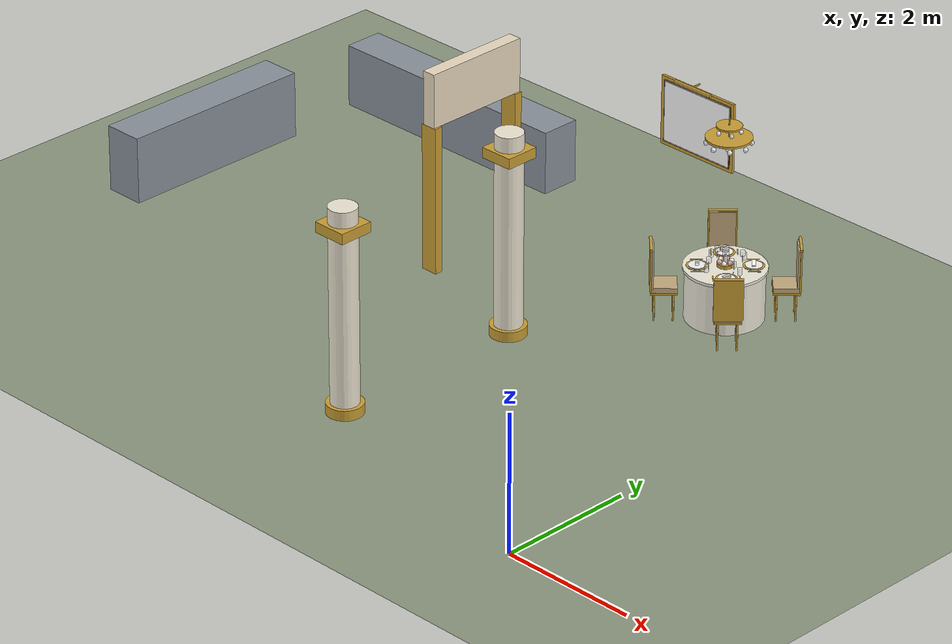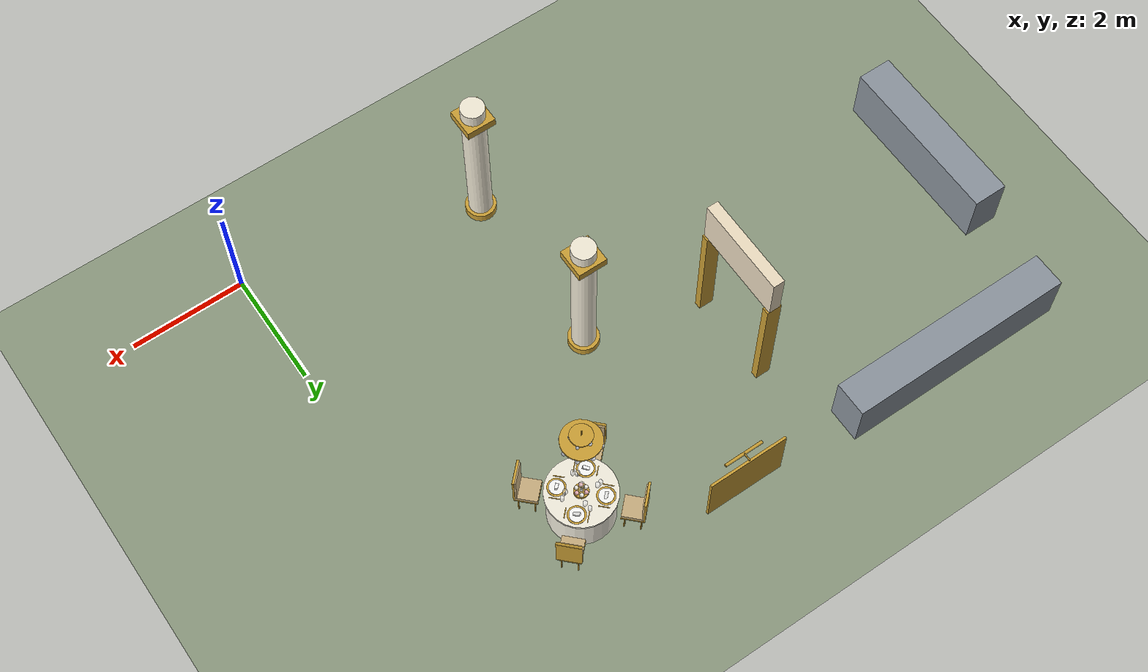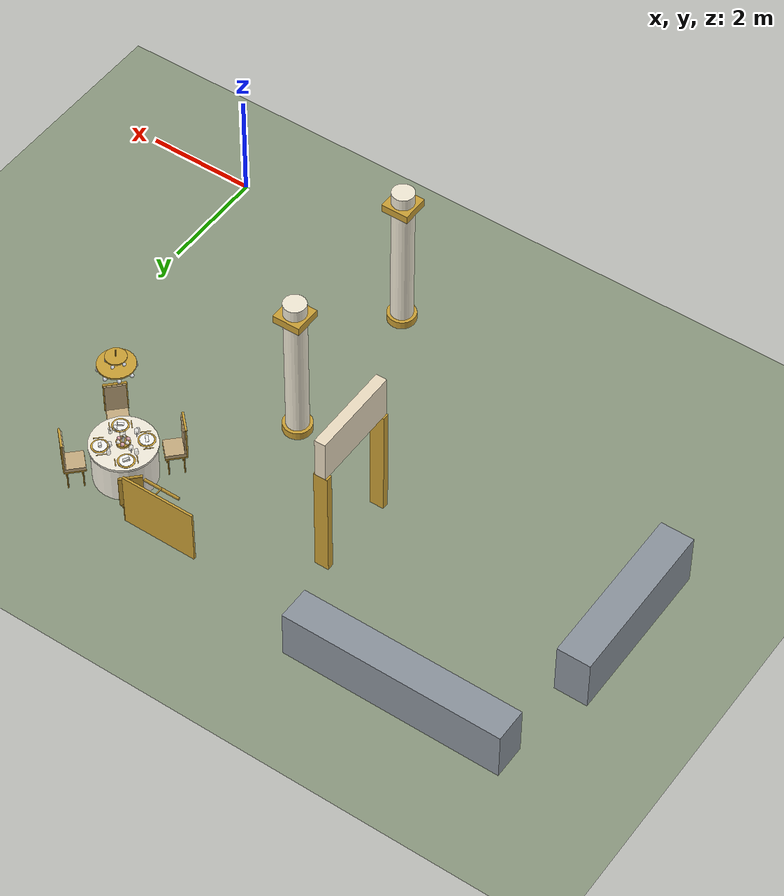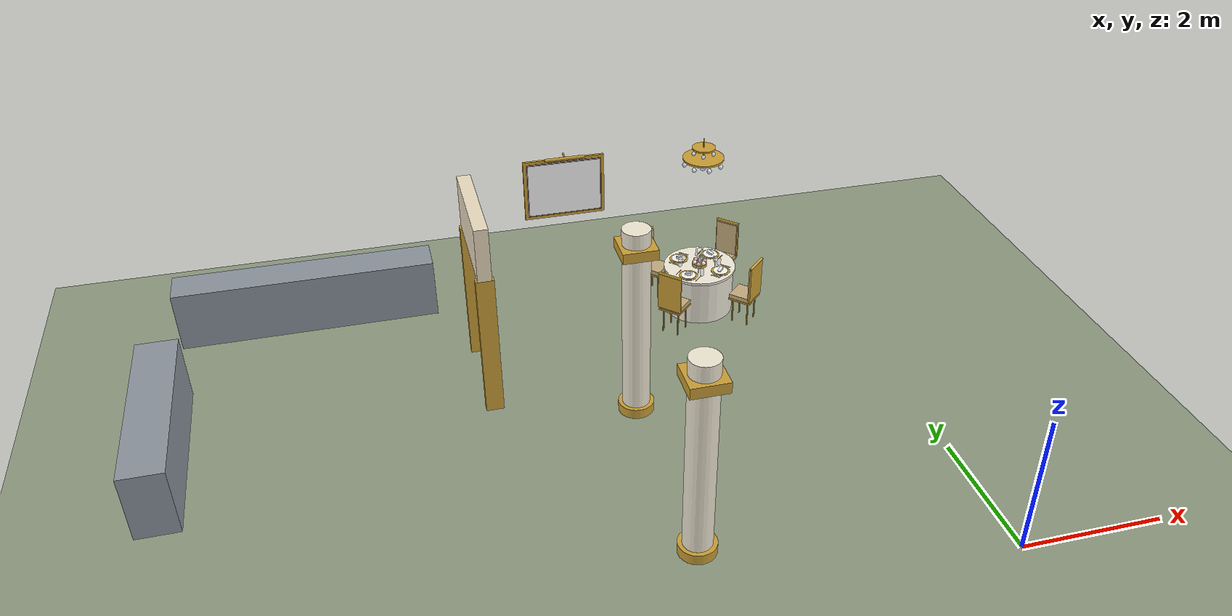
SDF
<sdf version="1.9">
 <world name="dar_tunibot">
  <model name="ground_plane">
   <static>true</static>
   <link name="link">
    <collision name="collision">
     <geometry><plane><normal>0 0 1</normal><size>60 60</size></plane></geometry>
    </collision>
    <visual name="visual">
     <geometry><plane><normal>0 0 1</normal><size>60 60</size></plane></geometry>
     <material><ambient>0.55 0.6 0.5 1</ambient><diffuse>0.55 0.6 0.5 1</diffuse></material>
    </visual>
   </link>
  </model>
  <model name="kitchen_door">
   <static>true</static>
   <pose>-6.0 5.3 0 0 0 1.5707963267948966</pose>
   <link name="link">
    <visual name="post_a_v">
     <pose>-0.760 0.000 1.100 0.0000 0.0000 0.0000</pose>
     <geometry><box><size>0.120 0.260 2.200</size></box></geometry>
     <material>
      <ambient>0.8 0.63 0.21 1</ambient>
      <diffuse>0.8 0.63 0.21 1</diffuse>
      <specular>0.1 0.1 0.1 1</specular>
     </material>
    </visual>
    <visual name="post_b_v">
     <pose>0.760 0.000 1.100 0.0000 0.0000 0.0000</pose>
     <geometry><box><size>0.120 0.260 2.200</size></box></geometry>
     <material>
      <ambient>0.8 0.63 0.21 1</ambient>
      <diffuse>0.8 0.63 0.21 1</diffuse>
      <specular>0.1 0.1 0.1 1</specular>
     </material>
    </visual>
    <visual name="lintel_v">
     <pose>0.000 0.000 2.600 0.0000 0.0000 0.0000</pose>
     <geometry><box><size>1.640 0.200 0.800</size></box></geometry>
     <material>
      <ambient>0.93 0.87 0.76 1</ambient>
      <diffuse>0.93 0.87 0.76 1</diffuse>
      <specular>0.1 0.1 0.1 1</specular>
     </material>
    </visual>
    <collision name="lintel_c">
     <pose>0.000 0.000 2.600 0.0000 0.0000 0.0000</pose>
     <geometry><box><size>1.640 0.200 0.800</size></box></geometry>
    </collision>
   </link>
  </model>
  <model name="column_3">
   <static>true</static>
   <pose>-4 4 0 0 0 0</pose>
   <link name="link">
    <visual name="base_v">
     <pose>0.000 0.000 0.075 0.0000 0.0000 0.0000</pose>
     <geometry><cylinder><radius>0.260</radius><length>0.150</length></cylinder></geometry>
     <material>
      <ambient>0.8 0.63 0.21 1</ambient>
      <diffuse>0.8 0.63 0.21 1</diffuse>
      <specular>0.1 0.1 0.1 1</specular>
     </material>
    </visual>
    <collision name="base_c">
     <pose>0.000 0.000 0.075 0.0000 0.0000 0.0000</pose>
     <geometry><cylinder><radius>0.260</radius><length>0.150</length></cylinder></geometry>
    </collision>
    <visual name="shaft_v">
     <pose>0.000 0.000 1.500 0.0000 0.0000 0.0000</pose>
     <geometry><cylinder><radius>0.200</radius><length>3.000</length></cylinder></geometry>
     <material>
      <ambient>0.95 0.92 0.84 1</ambient>
      <diffuse>0.95 0.92 0.84 1</diffuse>
      <specular>0.1 0.1 0.1 1</specular>
     </material>
    </visual>
    <collision name="shaft_c">
     <pose>0.000 0.000 1.500 0.0000 0.0000 0.0000</pose>
     <geometry><cylinder><radius>0.200</radius><length>3.000</length></cylinder></geometry>
    </collision>
    <visual name="capital_v">
     <pose>0.000 0.000 2.700 0.0000 0.0000 0.0000</pose>
     <geometry><box><size>0.500 0.500 0.150</size></box></geometry>
     <material>
      <ambient>0.8 0.63 0.21 1</ambient>
      <diffuse>0.8 0.63 0.21 1</diffuse>
      <specular>0.1 0.1 0.1 1</specular>
     </material>
    </visual>
   </link>
  </model>
  <model name="column_6">
   <static>true</static>
   <pose>-4 1 0 0 0 0</pose>
   <link name="link">
    <visual name="base_v">
     <pose>0.000 0.000 0.075 0.0000 0.0000 0.0000</pose>
     <geometry><cylinder><radius>0.260</radius><length>0.150</length></cylinder></geometry>
     <material>
      <ambient>0.8 0.63 0.21 1</ambient>
      <diffuse>0.8 0.63 0.21 1</diffuse>
      <specular>0.1 0.1 0.1 1</specular>
     </material>
    </visual>
    <collision name="base_c">
     <pose>0.000 0.000 0.075 0.0000 0.0000 0.0000</pose>
     <geometry><cylinder><radius>0.260</radius><length>0.150</length></cylinder></geometry>
    </collision>
    <visual name="shaft_v">
     <pose>0.000 0.000 1.500 0.0000 0.0000 0.0000</pose>
     <geometry><cylinder><radius>0.200</radius><length>3.000</length></cylinder></geometry>
     <material>
      <ambient>0.95 0.92 0.84 1</ambient>
      <diffuse>0.95 0.92 0.84 1</diffuse>
      <specular>0.1 0.1 0.1 1</specular>
     </material>
    </visual>
    <collision name="shaft_c">
     <pose>0.000 0.000 1.500 0.0000 0.0000 0.0000</pose>
     <geometry><cylinder><radius>0.200</radius><length>3.000</length></cylinder></geometry>
    </collision>
    <visual name="capital_v">
     <pose>0.000 0.000 2.700 0.0000 0.0000 0.0000</pose>
     <geometry><box><size>0.500 0.500 0.150</size></box></geometry>
     <material>
      <ambient>0.8 0.63 0.21 1</ambient>
      <diffuse>0.8 0.63 0.21 1</diffuse>
      <specular>0.1 0.1 0.1 1</specular>
     </material>
    </visual>
   </link>
  </model>
  <model name="table_1">
   <static>true</static>
   <pose>-2.3 6.4 0 0 0 0</pose>
   <link name="link">
    <visual name="cloth_v">
     <pose>0.000 0.000 0.370 0.0000 0.0000 0.0000</pose>
     <geometry><cylinder><radius>0.550</radius><length>0.740</length></cylinder></geometry>
     <material>
      <ambient>0.95 0.93 0.87 1</ambient>
      <diffuse>0.95 0.93 0.87 1</diffuse>
      <specular>0.1 0.1 0.1 1</specular>
     </material>
    </visual>
    <collision name="cloth_c">
     <pose>0.000 0.000 0.370 0.0000 0.0000 0.0000</pose>
     <geometry><cylinder><radius>0.550</radius><length>0.740</length></cylinder></geometry>
    </collision>
    <visual name="drape_v">
     <pose>0.000 0.000 0.750 0.0000 0.0000 0.0000</pose>
     <geometry><cylinder><radius>0.580</radius><length>0.040</length></cylinder></geometry>
     <material>
      <ambient>0.95 0.93 0.87 1</ambient>
      <diffuse>0.95 0.93 0.87 1</diffuse>
      <specular>0.1 0.1 0.1 1</specular>
     </material>
    </visual>
    <visual name="bowl_v">
     <pose>0.000 0.000 0.795 0.0000 0.0000 0.0000</pose>
     <geometry><cylinder><radius>0.120</radius><length>0.050</length></cylinder></geometry>
     <material>
      <ambient>0.8 0.63 0.21 1</ambient>
      <diffuse>0.8 0.63 0.21 1</diffuse>
      <specular>0.1 0.1 0.1 1</specular>
     </material>
    </visual>
    <visual name="bowl_foot_v">
     <pose>0.000 0.000 0.775 0.0000 0.0000 0.0000</pose>
     <geometry><cylinder><radius>0.060</radius><length>0.020</length></cylinder></geometry>
     <material>
      <ambient>0.8 0.63 0.21 1</ambient>
      <diffuse>0.8 0.63 0.21 1</diffuse>
      <specular>0.1 0.1 0.1 1</specular>
     </material>
    </visual>
    <visual name="candle_v">
     <pose>0.000 0.000 0.870 0.0000 0.0000 0.0000</pose>
     <geometry><cylinder><radius>0.022</radius><length>0.100</length></cylinder></geometry>
     <material>
      <ambient>0.98 0.98 0.97 1</ambient>
      <diffuse>0.98 0.98 0.97 1</diffuse>
      <specular>0.1 0.1 0.1 1</specular>
     </material>
    </visual>
    <visual name="flame_v">
     <pose>0.000 0.000 0.935 0.0000 0.0000 0.0000</pose>
     <geometry><sphere><radius>0.014</radius></sphere></geometry>
     <material>
      <ambient>0.8 0.63 0.21 1</ambient>
      <diffuse>0.8 0.63 0.21 1</diffuse>
      <specular>0.1 0.1 0.1 1</specular>
      <emissive>1.0 0.6 0.2 1</emissive>
     </material>
    </visual>
    <visual name="hurricane_v">
     <pose>0.000 0.000 0.940 0.0000 0.0000 0.0000</pose>
     <geometry><cylinder><radius>0.045</radius><length>0.240</length></cylinder></geometry>
     <transparency>0.75</transparency>
     <material>
      <ambient>0.9 0.92 0.96 1</ambient>
      <diffuse>0.9 0.92 0.96 1</diffuse>
      <specular>0.1 0.1 0.1 1</specular>
     </material>
    </visual>
    <visual name="rose0_v">
     <pose>0.085 0.000 0.835 0.0000 0.0000 0.0000</pose>
     <geometry><sphere><radius>0.035</radius></sphere></geometry>
     <material>
      <ambient>0.93 0.7 0.72 1</ambient>
      <diffuse>0.93 0.7 0.72 1</diffuse>
      <specular>0.1 0.1 0.1 1</specular>
     </material>
    </visual>
    <visual name="rose1_v">
     <pose>0.043 0.074 0.835 0.0000 0.0000 0.0000</pose>
     <geometry><sphere><radius>0.035</radius></sphere></geometry>
     <material>
      <ambient>0.97 0.95 0.91 1</ambient>
      <diffuse>0.97 0.95 0.91 1</diffuse>
      <specular>0.1 0.1 0.1 1</specular>
     </material>
    </visual>
    <visual name="rose2_v">
     <pose>-0.042 0.074 0.835 0.0000 0.0000 0.0000</pose>
     <geometry><sphere><radius>0.035</radius></sphere></geometry>
     <material>
      <ambient>0.93 0.7 0.72 1</ambient>
      <diffuse>0.93 0.7 0.72 1</diffuse>
      <specular>0.1 0.1 0.1 1</specular>
     </material>
    </visual>
    <visual name="rose3_v">
     <pose>-0.085 0.000 0.835 0.0000 0.0000 0.0000</pose>
     <geometry><sphere><radius>0.035</radius></sphere></geometry>
     <material>
      <ambient>0.97 0.95 0.91 1</ambient>
      <diffuse>0.97 0.95 0.91 1</diffuse>
      <specular>0.1 0.1 0.1 1</specular>
     </material>
    </visual>
    <visual name="rose4_v">
     <pose>-0.043 -0.074 0.835 0.0000 0.0000 0.0000</pose>
     <geometry><sphere><radius>0.035</radius></sphere></geometry>
     <material>
      <ambient>0.93 0.7 0.72 1</ambient>
      <diffuse>0.93 0.7 0.72 1</diffuse>
      <specular>0.1 0.1 0.1 1</specular>
     </material>
    </visual>
    <visual name="rose5_v">
     <pose>0.043 -0.074 0.835 0.0000 0.0000 0.0000</pose>
     <geometry><sphere><radius>0.035</radius></sphere></geometry>
     <material>
      <ambient>0.97 0.95 0.91 1</ambient>
      <diffuse>0.97 0.95 0.91 1</diffuse>
      <specular>0.1 0.1 0.1 1</specular>
     </material>
    </visual>
    <collision name="seat0_c">
     <pose>0.580 0.580 0.225 0.0000 0.0000 0.0000</pose>
     <geometry><box><size>0.400 0.400 0.450</size></box></geometry>
    </collision>
    <visual name="seat_frame0_v">
     <pose>0.580 0.580 0.430 0.0000 0.0000 0.7854</pose>
     <geometry><box><size>0.370 0.370 0.030</size></box></geometry>
     <material>
      <ambient>0.8 0.63 0.21 1</ambient>
      <diffuse>0.8 0.63 0.21 1</diffuse>
      <specular>0.1 0.1 0.1 1</specular>
     </material>
    </visual>
    <visual name="cushion0_v">
     <pose>0.580 0.580 0.480 0.0000 0.0000 0.7854</pose>
     <geometry><box><size>0.360 0.360 0.070</size></box></geometry>
     <material>
      <ambient>0.78 0.68 0.5 1</ambient>
      <diffuse>0.78 0.68 0.5 1</diffuse>
      <specular>0.1 0.1 0.1 1</specular>
     </material>
    </visual>
    <visual name="back_frame0_v">
     <pose>0.707 0.707 0.780 0.0000 0.0000 0.7854</pose>
     <geometry><box><size>0.025 0.400 0.620</size></box></geometry>
     <material>
      <ambient>0.8 0.63 0.21 1</ambient>
      <diffuse>0.8 0.63 0.21 1</diffuse>
      <specular>0.1 0.1 0.1 1</specular>
     </material>
    </visual>
    <visual name="back0_v">
     <pose>0.697 0.697 0.780 0.0000 0.0000 0.7854</pose>
     <geometry><box><size>0.050 0.360 0.580</size></box></geometry>
     <material>
      <ambient>0.78 0.68 0.5 1</ambient>
      <diffuse>0.78 0.68 0.5 1</diffuse>
      <specular>0.1 0.1 0.1 1</specular>
     </material>
    </visual>
    <visual name="back_top0_v">
     <pose>0.707 0.707 1.090 1.5708 0.0000 0.7854</pose>
     <geometry><cylinder><radius>0.020</radius><length>0.400</length></cylinder></geometry>
     <material>
      <ambient>0.8 0.63 0.21 1</ambient>
      <diffuse>0.8 0.63 0.21 1</diffuse>
      <specular>0.1 0.1 0.1 1</specular>
     </material>
    </visual>
    <visual name="leg0_0_v">
     <pose>0.580 0.396 0.210 0.0000 0.0000 0.7854</pose>
     <geometry><cylinder><radius>0.012</radius><length>0.420</length></cylinder></geometry>
     <material>
      <ambient>0.8 0.63 0.21 1</ambient>
      <diffuse>0.8 0.63 0.21 1</diffuse>
      <specular>0.1 0.1 0.1 1</specular>
     </material>
    </visual>
    <visual name="leg0_1_v">
     <pose>0.396 0.580 0.210 0.0000 0.0000 0.7854</pose>
     <geometry><cylinder><radius>0.012</radius><length>0.420</length></cylinder></geometry>
     <material>
      <ambient>0.8 0.63 0.21 1</ambient>
      <diffuse>0.8 0.63 0.21 1</diffuse>
      <specular>0.1 0.1 0.1 1</specular>
     </material>
    </visual>
    <visual name="leg0_2_v">
     <pose>0.764 0.580 0.210 0.0000 0.0000 0.7854</pose>
     <geometry><cylinder><radius>0.012</radius><length>0.420</length></cylinder></geometry>
     <material>
      <ambient>0.8 0.63 0.21 1</ambient>
      <diffuse>0.8 0.63 0.21 1</diffuse>
      <specular>0.1 0.1 0.1 1</specular>
     </material>
    </visual>
    <visual name="leg0_3_v">
     <pose>0.580 0.764 0.210 0.0000 0.0000 0.7854</pose>
     <geometry><cylinder><radius>0.012</radius><length>0.420</length></cylinder></geometry>
     <material>
      <ambient>0.8 0.63 0.21 1</ambient>
      <diffuse>0.8 0.63 0.21 1</diffuse>
      <specular>0.1 0.1 0.1 1</specular>
     </material>
    </visual>
    <visual name="charger0_v">
     <pose>0.269 0.269 0.773 0.0000 0.0000 0.7854</pose>
     <geometry><cylinder><radius>0.150</radius><length>0.006</length></cylinder></geometry>
     <material>
      <ambient>0.8 0.63 0.21 1</ambient>
      <diffuse>0.8 0.63 0.21 1</diffuse>
      <specular>0.1 0.1 0.1 1</specular>
     </material>
    </visual>
    <visual name="plate0_v">
     <pose>0.269 0.269 0.781 0.0000 0.0000 0.7854</pose>
     <geometry><cylinder><radius>0.120</radius><length>0.010</length></cylinder></geometry>
     <material>
      <ambient>0.98 0.98 0.97 1</ambient>
      <diffuse>0.98 0.98 0.97 1</diffuse>
      <specular>0.1 0.1 0.1 1</specular>
     </material>
    </visual>
    <visual name="napkin0_v">
     <pose>0.269 0.269 0.803 0.3500 0.0000 0.7854</pose>
     <geometry><box><size>0.050 0.110 0.035</size></box></geometry>
     <material>
      <ambient>0.98 0.98 0.97 1</ambient>
      <diffuse>0.98 0.98 0.97 1</diffuse>
      <specular>0.1 0.1 0.1 1</specular>
     </material>
    </visual>
    <visual name="fork0_v">
     <pose>0.396 0.141 0.772 0.0000 0.0000 0.7854</pose>
     <geometry><box><size>0.170 0.014 0.004</size></box></geometry>
     <material>
      <ambient>0.8 0.63 0.21 1</ambient>
      <diffuse>0.8 0.63 0.21 1</diffuse>
      <specular>0.1 0.1 0.1 1</specular>
     </material>
    </visual>
    <visual name="knife0_v">
     <pose>0.141 0.396 0.772 0.0000 0.0000 0.7854</pose>
     <geometry><box><size>0.180 0.012 0.004</size></box></geometry>
     <material>
      <ambient>0.8 0.63 0.21 1</ambient>
      <diffuse>0.8 0.63 0.21 1</diffuse>
      <specular>0.1 0.1 0.1 1</specular>
     </material>
    </visual>
    <visual name="wine_stem0_v">
     <pose>0.092 0.233 0.820 0.0000 0.0000 0.7854</pose>
     <geometry><cylinder><radius>0.004</radius><length>0.100</length></cylinder></geometry>
     <material>
      <ambient>0.9 0.92 0.96 1</ambient>
      <diffuse>0.9 0.92 0.96 1</diffuse>
      <specular>0.1 0.1 0.1 1</specular>
     </material>
    </visual>
    <visual name="wine_bowl0_v">
     <pose>0.092 0.233 0.905 0.0000 0.0000 0.7854</pose>
     <geometry><cylinder><radius>0.035</radius><length>0.070</length></cylinder></geometry>
     <transparency>0.6</transparency>
     <material>
      <ambient>0.9 0.92 0.96 1</ambient>
      <diffuse>0.9 0.92 0.96 1</diffuse>
      <specular>0.1 0.1 0.1 1</specular>
     </material>
    </visual>
    <visual name="water0_v">
     <pose>0.057 0.311 0.820 0.0000 0.0000 0.7854</pose>
     <geometry><cylinder><radius>0.030</radius><length>0.100</length></cylinder></geometry>
     <transparency>0.6</transparency>
     <material>
      <ambient>0.9 0.92 0.96 1</ambient>
      <diffuse>0.9 0.92 0.96 1</diffuse>
      <specular>0.1 0.1 0.1 1</specular>
     </material>
    </visual>
    <collision name="seat1_c">
     <pose>-0.580 0.580 0.225 0.0000 0.0000 0.0000</pose>
     <geometry><box><size>0.400 0.400 0.450</size></box></geometry>
    </collision>
    <visual name="seat_frame1_v">
     <pose>-0.580 0.580 0.430 0.0000 0.0000 2.3562</pose>
     <geometry><box><size>0.370 0.370 0.030</size></box></geometry>
     <material>
      <ambient>0.8 0.63 0.21 1</ambient>
      <diffuse>0.8 0.63 0.21 1</diffuse>
      <specular>0.1 0.1 0.1 1</specular>
     </material>
    </visual>
    <visual name="cushion1_v">
     <pose>-0.580 0.580 0.480 0.0000 0.0000 2.3562</pose>
     <geometry><box><size>0.360 0.360 0.070</size></box></geometry>
     <material>
      <ambient>0.78 0.68 0.5 1</ambient>
      <diffuse>0.78 0.68 0.5 1</diffuse>
      <specular>0.1 0.1 0.1 1</specular>
     </material>
    </visual>
    <visual name="back_frame1_v">
     <pose>-0.707 0.707 0.780 0.0000 0.0000 2.3562</pose>
     <geometry><box><size>0.025 0.400 0.620</size></box></geometry>
     <material>
      <ambient>0.8 0.63 0.21 1</ambient>
      <diffuse>0.8 0.63 0.21 1</diffuse>
      <specular>0.1 0.1 0.1 1</specular>
     </material>
    </visual>
    <visual name="back1_v">
     <pose>-0.697 0.697 0.780 0.0000 0.0000 2.3562</pose>
     <geometry><box><size>0.050 0.360 0.580</size></box></geometry>
     <material>
      <ambient>0.78 0.68 0.5 1</ambient>
      <diffuse>0.78 0.68 0.5 1</diffuse>
      <specular>0.1 0.1 0.1 1</specular>
     </material>
    </visual>
    <visual name="back_top1_v">
     <pose>-0.707 0.707 1.090 1.5708 0.0000 2.3562</pose>
     <geometry><cylinder><radius>0.020</radius><length>0.400</length></cylinder></geometry>
     <material>
      <ambient>0.8 0.63 0.21 1</ambient>
      <diffuse>0.8 0.63 0.21 1</diffuse>
      <specular>0.1 0.1 0.1 1</specular>
     </material>
    </visual>
    <visual name="leg1_0_v">
     <pose>-0.396 0.580 0.210 0.0000 0.0000 2.3562</pose>
     <geometry><cylinder><radius>0.012</radius><length>0.420</length></cylinder></geometry>
     <material>
      <ambient>0.8 0.63 0.21 1</ambient>
      <diffuse>0.8 0.63 0.21 1</diffuse>
      <specular>0.1 0.1 0.1 1</specular>
     </material>
    </visual>
    <visual name="leg1_1_v">
     <pose>-0.580 0.396 0.210 0.0000 0.0000 2.3562</pose>
     <geometry><cylinder><radius>0.012</radius><length>0.420</length></cylinder></geometry>
     <material>
      <ambient>0.8 0.63 0.21 1</ambient>
      <diffuse>0.8 0.63 0.21 1</diffuse>
      <specular>0.1 0.1 0.1 1</specular>
     </material>
    </visual>
    <visual name="leg1_2_v">
     <pose>-0.580 0.764 0.210 0.0000 0.0000 2.3562</pose>
     <geometry><cylinder><radius>0.012</radius><length>0.420</length></cylinder></geometry>
     <material>
      <ambient>0.8 0.63 0.21 1</ambient>
      <diffuse>0.8 0.63 0.21 1</diffuse>
      <specular>0.1 0.1 0.1 1</specular>
     </material>
    </visual>
    <visual name="leg1_3_v">
     <pose>-0.764 0.580 0.210 0.0000 0.0000 2.3562</pose>
     <geometry><cylinder><radius>0.012</radius><length>0.420</length></cylinder></geometry>
     <material>
      <ambient>0.8 0.63 0.21 1</ambient>
      <diffuse>0.8 0.63 0.21 1</diffuse>
      <specular>0.1 0.1 0.1 1</specular>
     </material>
    </visual>
    <visual name="charger1_v">
     <pose>-0.269 0.269 0.773 0.0000 0.0000 2.3562</pose>
     <geometry><cylinder><radius>0.150</radius><length>0.006</length></cylinder></geometry>
     <material>
      <ambient>0.8 0.63 0.21 1</ambient>
      <diffuse>0.8 0.63 0.21 1</diffuse>
      <specular>0.1 0.1 0.1 1</specular>
     </material>
    </visual>
    <visual name="plate1_v">
     <pose>-0.269 0.269 0.781 0.0000 0.0000 2.3562</pose>
     <geometry><cylinder><radius>0.120</radius><length>0.010</length></cylinder></geometry>
     <material>
      <ambient>0.98 0.98 0.97 1</ambient>
      <diffuse>0.98 0.98 0.97 1</diffuse>
      <specular>0.1 0.1 0.1 1</specular>
     </material>
    </visual>
    <visual name="napkin1_v">
     <pose>-0.269 0.269 0.803 0.3500 0.0000 2.3562</pose>
     <geometry><box><size>0.050 0.110 0.035</size></box></geometry>
     <material>
      <ambient>0.98 0.98 0.97 1</ambient>
      <diffuse>0.98 0.98 0.97 1</diffuse>
      <specular>0.1 0.1 0.1 1</specular>
     </material>
    </visual>
    <visual name="fork1_v">
     <pose>-0.141 0.396 0.772 0.0000 0.0000 2.3562</pose>
     <geometry><box><size>0.170 0.014 0.004</size></box></geometry>
     <material>
      <ambient>0.8 0.63 0.21 1</ambient>
      <diffuse>0.8 0.63 0.21 1</diffuse>
      <specular>0.1 0.1 0.1 1</specular>
     </material>
    </visual>
    <visual name="knife1_v">
     <pose>-0.396 0.141 0.772 0.0000 0.0000 2.3562</pose>
     <geometry><box><size>0.180 0.012 0.004</size></box></geometry>
     <material>
      <ambient>0.8 0.63 0.21 1</ambient>
      <diffuse>0.8 0.63 0.21 1</diffuse>
      <specular>0.1 0.1 0.1 1</specular>
     </material>
    </visual>
    <visual name="wine_stem1_v">
     <pose>-0.233 0.092 0.820 0.0000 0.0000 2.3562</pose>
     <geometry><cylinder><radius>0.004</radius><length>0.100</length></cylinder></geometry>
     <material>
      <ambient>0.9 0.92 0.96 1</ambient>
      <diffuse>0.9 0.92 0.96 1</diffuse>
      <specular>0.1 0.1 0.1 1</specular>
     </material>
    </visual>
    <visual name="wine_bowl1_v">
     <pose>-0.233 0.092 0.905 0.0000 0.0000 2.3562</pose>
     <geometry><cylinder><radius>0.035</radius><length>0.070</length></cylinder></geometry>
     <transparency>0.6</transparency>
     <material>
      <ambient>0.9 0.92 0.96 1</ambient>
      <diffuse>0.9 0.92 0.96 1</diffuse>
      <specular>0.1 0.1 0.1 1</specular>
     </material>
    </visual>
    <visual name="water1_v">
     <pose>-0.311 0.057 0.820 0.0000 0.0000 2.3562</pose>
     <geometry><cylinder><radius>0.030</radius><length>0.100</length></cylinder></geometry>
     <transparency>0.6</transparency>
     <material>
      <ambient>0.9 0.92 0.96 1</ambient>
      <diffuse>0.9 0.92 0.96 1</diffuse>
      <specular>0.1 0.1 0.1 1</specular>
     </material>
    </visual>
    <collision name="seat2_c">
     <pose>-0.580 -0.580 0.225 0.0000 0.0000 0.0000</pose>
     <geometry><box><size>0.400 0.400 0.450</size></box></geometry>
    </collision>
    <visual name="seat_frame2_v">
     <pose>-0.580 -0.580 0.430 0.0000 0.0000 3.9270</pose>
     <geometry><box><size>0.370 0.370 0.030</size></box></geometry>
     <material>
      <ambient>0.8 0.63 0.21 1</ambient>
      <diffuse>0.8 0.63 0.21 1</diffuse>
      <specular>0.1 0.1 0.1 1</specular>
     </material>
    </visual>
    <visual name="cushion2_v">
     <pose>-0.580 -0.580 0.480 0.0000 0.0000 3.9270</pose>
     <geometry><box><size>0.360 0.360 0.070</size></box></geometry>
     <material>
      <ambient>0.78 0.68 0.5 1</ambient>
      <diffuse>0.78 0.68 0.5 1</diffuse>
      <specular>0.1 0.1 0.1 1</specular>
     </material>
    </visual>
    <visual name="back_frame2_v">
     <pose>-0.707 -0.707 0.780 0.0000 0.0000 3.9270</pose>
     <geometry><box><size>0.025 0.400 0.620</size></box></geometry>
     <material>
      <ambient>0.8 0.63 0.21 1</ambient>
      <diffuse>0.8 0.63 0.21 1</diffuse>
      <specular>0.1 0.1 0.1 1</specular>
     </material>
    </visual>
    <visual name="back2_v">
     <pose>-0.697 -0.697 0.780 0.0000 0.0000 3.9270</pose>
     <geometry><box><size>0.050 0.360 0.580</size></box></geometry>
     <material>
      <ambient>0.78 0.68 0.5 1</ambient>
      <diffuse>0.78 0.68 0.5 1</diffuse>
      <specular>0.1 0.1 0.1 1</specular>
     </material>
    </visual>
    <visual name="back_top2_v">
     <pose>-0.707 -0.707 1.090 1.5708 0.0000 3.9270</pose>
     <geometry><cylinder><radius>0.020</radius><length>0.400</length></cylinder></geometry>
     <material>
      <ambient>0.8 0.63 0.21 1</ambient>
      <diffuse>0.8 0.63 0.21 1</diffuse>
      <specular>0.1 0.1 0.1 1</specular>
     </material>
    </visual>
    <visual name="leg2_0_v">
     <pose>-0.580 -0.396 0.210 0.0000 0.0000 3.9270</pose>
     <geometry><cylinder><radius>0.012</radius><length>0.420</length></cylinder></geometry>
     <material>
      <ambient>0.8 0.63 0.21 1</ambient>
      <diffuse>0.8 0.63 0.21 1</diffuse>
      <specular>0.1 0.1 0.1 1</specular>
     </material>
    </visual>
    <visual name="leg2_1_v">
     <pose>-0.396 -0.580 0.210 0.0000 0.0000 3.9270</pose>
     <geometry><cylinder><radius>0.012</radius><length>0.420</length></cylinder></geometry>
     <material>
      <ambient>0.8 0.63 0.21 1</ambient>
      <diffuse>0.8 0.63 0.21 1</diffuse>
      <specular>0.1 0.1 0.1 1</specular>
     </material>
    </visual>
    <visual name="leg2_2_v">
     <pose>-0.764 -0.580 0.210 0.0000 0.0000 3.9270</pose>
     <geometry><cylinder><radius>0.012</radius><length>0.420</length></cylinder></geometry>
     <material>
      <ambient>0.8 0.63 0.21 1</ambient>
      <diffuse>0.8 0.63 0.21 1</diffuse>
      <specular>0.1 0.1 0.1 1</specular>
     </material>
    </visual>
    <visual name="leg2_3_v">
     <pose>-0.580 -0.764 0.210 0.0000 0.0000 3.9270</pose>
     <geometry><cylinder><radius>0.012</radius><length>0.420</length></cylinder></geometry>
     <material>
      <ambient>0.8 0.63 0.21 1</ambient>
      <diffuse>0.8 0.63 0.21 1</diffuse>
      <specular>0.1 0.1 0.1 1</specular>
     </material>
    </visual>
    <visual name="charger2_v">
     <pose>-0.269 -0.269 0.773 0.0000 0.0000 3.9270</pose>
     <geometry><cylinder><radius>0.150</radius><length>0.006</length></cylinder></geometry>
     <material>
      <ambient>0.8 0.63 0.21 1</ambient>
      <diffuse>0.8 0.63 0.21 1</diffuse>
      <specular>0.1 0.1 0.1 1</specular>
     </material>
    </visual>
    <visual name="plate2_v">
     <pose>-0.269 -0.269 0.781 0.0000 0.0000 3.9270</pose>
     <geometry><cylinder><radius>0.120</radius><length>0.010</length></cylinder></geometry>
     <material>
      <ambient>0.98 0.98 0.97 1</ambient>
      <diffuse>0.98 0.98 0.97 1</diffuse>
      <specular>0.1 0.1 0.1 1</specular>
     </material>
    </visual>
    <visual name="napkin2_v">
     <pose>-0.269 -0.269 0.803 0.3500 0.0000 3.9270</pose>
     <geometry><box><size>0.050 0.110 0.035</size></box></geometry>
     <material>
      <ambient>0.98 0.98 0.97 1</ambient>
      <diffuse>0.98 0.98 0.97 1</diffuse>
      <specular>0.1 0.1 0.1 1</specular>
     </material>
    </visual>
    <visual name="fork2_v">
     <pose>-0.396 -0.141 0.772 0.0000 0.0000 3.9270</pose>
     <geometry><box><size>0.170 0.014 0.004</size></box></geometry>
     <material>
      <ambient>0.8 0.63 0.21 1</ambient>
      <diffuse>0.8 0.63 0.21 1</diffuse>
      <specular>0.1 0.1 0.1 1</specular>
     </material>
    </visual>
    <visual name="knife2_v">
     <pose>-0.141 -0.396 0.772 0.0000 0.0000 3.9270</pose>
     <geometry><box><size>0.180 0.012 0.004</size></box></geometry>
     <material>
      <ambient>0.8 0.63 0.21 1</ambient>
      <diffuse>0.8 0.63 0.21 1</diffuse>
      <specular>0.1 0.1 0.1 1</specular>
     </material>
    </visual>
    <visual name="wine_stem2_v">
     <pose>-0.092 -0.233 0.820 0.0000 0.0000 3.9270</pose>
     <geometry><cylinder><radius>0.004</radius><length>0.100</length></cylinder></geometry>
     <material>
      <ambient>0.9 0.92 0.96 1</ambient>
      <diffuse>0.9 0.92 0.96 1</diffuse>
      <specular>0.1 0.1 0.1 1</specular>
     </material>
    </visual>
    <visual name="wine_bowl2_v">
     <pose>-0.092 -0.233 0.905 0.0000 0.0000 3.9270</pose>
     <geometry><cylinder><radius>0.035</radius><length>0.070</length></cylinder></geometry>
     <transparency>0.6</transparency>
     <material>
      <ambient>0.9 0.92 0.96 1</ambient>
      <diffuse>0.9 0.92 0.96 1</diffuse>
      <specular>0.1 0.1 0.1 1</specular>
     </material>
    </visual>
    <visual name="water2_v">
     <pose>-0.057 -0.311 0.820 0.0000 0.0000 3.9270</pose>
     <geometry><cylinder><radius>0.030</radius><length>0.100</length></cylinder></geometry>
     <transparency>0.6</transparency>
     <material>
      <ambient>0.9 0.92 0.96 1</ambient>
      <diffuse>0.9 0.92 0.96 1</diffuse>
      <specular>0.1 0.1 0.1 1</specular>
     </material>
    </visual>
    <collision name="seat3_c">
     <pose>0.580 -0.580 0.225 0.0000 0.0000 0.0000</pose>
     <geometry><box><size>0.400 0.400 0.450</size></box></geometry>
    </collision>
    <visual name="seat_frame3_v">
     <pose>0.580 -0.580 0.430 0.0000 0.0000 5.4978</pose>
     <geometry><box><size>0.370 0.370 0.030</size></box></geometry>
     <material>
      <ambient>0.8 0.63 0.21 1</ambient>
      <diffuse>0.8 0.63 0.21 1</diffuse>
      <specular>0.1 0.1 0.1 1</specular>
     </material>
    </visual>
    <visual name="cushion3_v">
     <pose>0.580 -0.580 0.480 0.0000 0.0000 5.4978</pose>
     <geometry><box><size>0.360 0.360 0.070</size></box></geometry>
     <material>
      <ambient>0.78 0.68 0.5 1</ambient>
      <diffuse>0.78 0.68 0.5 1</diffuse>
      <specular>0.1 0.1 0.1 1</specular>
     </material>
    </visual>
    <visual name="back_frame3_v">
     <pose>0.707 -0.707 0.780 0.0000 0.0000 5.4978</pose>
     <geometry><box><size>0.025 0.400 0.620</size></box></geometry>
     <material>
      <ambient>0.8 0.63 0.21 1</ambient>
      <diffuse>0.8 0.63 0.21 1</diffuse>
      <specular>0.1 0.1 0.1 1</specular>
     </material>
    </visual>
    <visual name="back3_v">
     <pose>0.697 -0.697 0.780 0.0000 0.0000 5.4978</pose>
     <geometry><box><size>0.050 0.360 0.580</size></box></geometry>
     <material>
      <ambient>0.78 0.68 0.5 1</ambient>
      <diffuse>0.78 0.68 0.5 1</diffuse>
      <specular>0.1 0.1 0.1 1</specular>
     </material>
    </visual>
    <visual name="back_top3_v">
     <pose>0.707 -0.707 1.090 1.5708 0.0000 5.4978</pose>
     <geometry><cylinder><radius>0.020</radius><length>0.400</length></cylinder></geometry>
     <material>
      <ambient>0.8 0.63 0.21 1</ambient>
      <diffuse>0.8 0.63 0.21 1</diffuse>
      <specular>0.1 0.1 0.1 1</specular>
     </material>
    </visual>
    <visual name="leg3_0_v">
     <pose>0.396 -0.580 0.210 0.0000 0.0000 5.4978</pose>
     <geometry><cylinder><radius>0.012</radius><length>0.420</length></cylinder></geometry>
     <material>
      <ambient>0.8 0.63 0.21 1</ambient>
      <diffuse>0.8 0.63 0.21 1</diffuse>
      <specular>0.1 0.1 0.1 1</specular>
     </material>
    </visual>
    <visual name="leg3_1_v">
     <pose>0.580 -0.396 0.210 0.0000 0.0000 5.4978</pose>
     <geometry><cylinder><radius>0.012</radius><length>0.420</length></cylinder></geometry>
     <material>
      <ambient>0.8 0.63 0.21 1</ambient>
      <diffuse>0.8 0.63 0.21 1</diffuse>
      <specular>0.1 0.1 0.1 1</specular>
     </material>
    </visual>
    <visual name="leg3_2_v">
     <pose>0.580 -0.764 0.210 0.0000 0.0000 5.4978</pose>
     <geometry><cylinder><radius>0.012</radius><length>0.420</length></cylinder></geometry>
     <material>
      <ambient>0.8 0.63 0.21 1</ambient>
      <diffuse>0.8 0.63 0.21 1</diffuse>
      <specular>0.1 0.1 0.1 1</specular>
     </material>
    </visual>
    <visual name="leg3_3_v">
     <pose>0.764 -0.580 0.210 0.0000 0.0000 5.4978</pose>
     <geometry><cylinder><radius>0.012</radius><length>0.420</length></cylinder></geometry>
     <material>
      <ambient>0.8 0.63 0.21 1</ambient>
      <diffuse>0.8 0.63 0.21 1</diffuse>
      <specular>0.1 0.1 0.1 1</specular>
     </material>
    </visual>
    <visual name="charger3_v">
     <pose>0.269 -0.269 0.773 0.0000 0.0000 5.4978</pose>
     <geometry><cylinder><radius>0.150</radius><length>0.006</length></cylinder></geometry>
     <material>
      <ambient>0.8 0.63 0.21 1</ambient>
      <diffuse>0.8 0.63 0.21 1</diffuse>
      <specular>0.1 0.1 0.1 1</specular>
     </material>
    </visual>
    <visual name="plate3_v">
     <pose>0.269 -0.269 0.781 0.0000 0.0000 5.4978</pose>
     <geometry><cylinder><radius>0.120</radius><length>0.010</length></cylinder></geometry>
     <material>
      <ambient>0.98 0.98 0.97 1</ambient>
      <diffuse>0.98 0.98 0.97 1</diffuse>
      <specular>0.1 0.1 0.1 1</specular>
     </material>
    </visual>
    <visual name="napkin3_v">
     <pose>0.269 -0.269 0.803 0.3500 0.0000 5.4978</pose>
     <geometry><box><size>0.050 0.110 0.035</size></box></geometry>
     <material>
      <ambient>0.98 0.98 0.97 1</ambient>
      <diffuse>0.98 0.98 0.97 1</diffuse>
      <specular>0.1 0.1 0.1 1</specular>
     </material>
    </visual>
    <visual name="fork3_v">
     <pose>0.141 -0.396 0.772 0.0000 0.0000 5.4978</pose>
     <geometry><box><size>0.170 0.014 0.004</size></box></geometry>
     <material>
      <ambient>0.8 0.63 0.21 1</ambient>
      <diffuse>0.8 0.63 0.21 1</diffuse>
      <specular>0.1 0.1 0.1 1</specular>
     </material>
    </visual>
    <visual name="knife3_v">
     <pose>0.396 -0.141 0.772 0.0000 0.0000 5.4978</pose>
     <geometry><box><size>0.180 0.012 0.004</size></box></geometry>
     <material>
      <ambient>0.8 0.63 0.21 1</ambient>
      <diffuse>0.8 0.63 0.21 1</diffuse>
      <specular>0.1 0.1 0.1 1</specular>
     </material>
    </visual>
    <visual name="wine_stem3_v">
     <pose>0.233 -0.092 0.820 0.0000 0.0000 5.4978</pose>
     <geometry><cylinder><radius>0.004</radius><length>0.100</length></cylinder></geometry>
     <material>
      <ambient>0.9 0.92 0.96 1</ambient>
      <diffuse>0.9 0.92 0.96 1</diffuse>
      <specular>0.1 0.1 0.1 1</specular>
     </material>
    </visual>
    <visual name="wine_bowl3_v">
     <pose>0.233 -0.092 0.905 0.0000 0.0000 5.4978</pose>
     <geometry><cylinder><radius>0.035</radius><length>0.070</length></cylinder></geometry>
     <transparency>0.6</transparency>
     <material>
      <ambient>0.9 0.92 0.96 1</ambient>
      <diffuse>0.9 0.92 0.96 1</diffuse>
      <specular>0.1 0.1 0.1 1</specular>
     </material>
    </visual>
    <visual name="water3_v">
     <pose>0.311 -0.057 0.820 0.0000 0.0000 5.4978</pose>
     <geometry><cylinder><radius>0.030</radius><length>0.100</length></cylinder></geometry>
     <transparency>0.6</transparency>
     <material>
      <ambient>0.9 0.92 0.96 1</ambient>
      <diffuse>0.9 0.92 0.96 1</diffuse>
      <specular>0.1 0.1 0.1 1</specular>
     </material>
    </visual>
    <visual name="chand_rod_v">
     <pose>0.000 0.000 2.750 0.0000 0.0000 0.0000</pose>
     <geometry><cylinder><radius>0.010</radius><length>0.500</length></cylinder></geometry>
     <material>
      <ambient>0.8 0.63 0.21 1</ambient>
      <diffuse>0.8 0.63 0.21 1</diffuse>
      <specular>0.1 0.1 0.1 1</specular>
     </material>
    </visual>
    <visual name="chand_ring_v">
     <pose>0.000 0.000 2.680 0.0000 0.0000 0.0000</pose>
     <geometry><cylinder><radius>0.320</radius><length>0.030</length></cylinder></geometry>
     <material>
      <ambient>0.8 0.63 0.21 1</ambient>
      <diffuse>0.8 0.63 0.21 1</diffuse>
      <specular>0.1 0.1 0.1 1</specular>
     </material>
    </visual>
    <visual name="chand_ring_top_v">
     <pose>0.000 0.000 2.850 0.0000 0.0000 0.0000</pose>
     <geometry><cylinder><radius>0.180</radius><length>0.025</length></cylinder></geometry>
     <material>
      <ambient>0.8 0.63 0.21 1</ambient>
      <diffuse>0.8 0.63 0.21 1</diffuse>
      <specular>0.1 0.1 0.1 1</specular>
     </material>
    </visual>
    <visual name="chand_drop_v">
     <pose>0.000 0.000 2.520 0.0000 0.0000 0.0000</pose>
     <geometry><sphere><radius>0.050</radius></sphere></geometry>
     <material>
      <ambient>0.9 0.92 0.96 1</ambient>
      <diffuse>0.9 0.92 0.96 1</diffuse>
      <specular>0.1 0.1 0.1 1</specular>
      <emissive>0.55 0.52 0.45 1</emissive>
     </material>
    </visual>
    <visual name="crystal0_0_v">
     <pose>0.300 0.000 2.600 0.0000 0.0000 0.0000</pose>
     <geometry><sphere><radius>0.035</radius></sphere></geometry>
     <material>
      <ambient>0.9 0.92 0.96 1</ambient>
      <diffuse>0.9 0.92 0.96 1</diffuse>
      <specular>0.1 0.1 0.1 1</specular>
      <emissive>0.55 0.52 0.45 1</emissive>
     </material>
    </visual>
    <visual name="crystal0_1_v">
     <pose>0.212 0.212 2.600 0.0000 0.0000 0.0000</pose>
     <geometry><sphere><radius>0.035</radius></sphere></geometry>
     <material>
      <ambient>0.9 0.92 0.96 1</ambient>
      <diffuse>0.9 0.92 0.96 1</diffuse>
      <specular>0.1 0.1 0.1 1</specular>
      <emissive>0.55 0.52 0.45 1</emissive>
     </material>
    </visual>
    <visual name="crystal0_2_v">
     <pose>0.000 0.300 2.600 0.0000 0.0000 0.0000</pose>
     <geometry><sphere><radius>0.035</radius></sphere></geometry>
     <material>
      <ambient>0.9 0.92 0.96 1</ambient>
      <diffuse>0.9 0.92 0.96 1</diffuse>
      <specular>0.1 0.1 0.1 1</specular>
      <emissive>0.55 0.52 0.45 1</emissive>
     </material>
    </visual>
    <visual name="crystal0_3_v">
     <pose>-0.212 0.212 2.600 0.0000 0.0000 0.0000</pose>
     <geometry><sphere><radius>0.035</radius></sphere></geometry>
     <material>
      <ambient>0.9 0.92 0.96 1</ambient>
      <diffuse>0.9 0.92 0.96 1</diffuse>
      <specular>0.1 0.1 0.1 1</specular>
      <emissive>0.55 0.52 0.45 1</emissive>
     </material>
    </visual>
    <visual name="crystal0_4_v">
     <pose>-0.300 0.000 2.600 0.0000 0.0000 0.0000</pose>
     <geometry><sphere><radius>0.035</radius></sphere></geometry>
     <material>
      <ambient>0.9 0.92 0.96 1</ambient>
      <diffuse>0.9 0.92 0.96 1</diffuse>
      <specular>0.1 0.1 0.1 1</specular>
      <emissive>0.55 0.52 0.45 1</emissive>
     </material>
    </visual>
    <visual name="crystal0_5_v">
     <pose>-0.212 -0.212 2.600 0.0000 0.0000 0.0000</pose>
     <geometry><sphere><radius>0.035</radius></sphere></geometry>
     <material>
      <ambient>0.9 0.92 0.96 1</ambient>
      <diffuse>0.9 0.92 0.96 1</diffuse>
      <specular>0.1 0.1 0.1 1</specular>
      <emissive>0.55 0.52 0.45 1</emissive>
     </material>
    </visual>
    <visual name="crystal0_6_v">
     <pose>-0.000 -0.300 2.600 0.0000 0.0000 0.0000</pose>
     <geometry><sphere><radius>0.035</radius></sphere></geometry>
     <material>
      <ambient>0.9 0.92 0.96 1</ambient>
      <diffuse>0.9 0.92 0.96 1</diffuse>
      <specular>0.1 0.1 0.1 1</specular>
      <emissive>0.55 0.52 0.45 1</emissive>
     </material>
    </visual>
    <visual name="crystal0_7_v">
     <pose>0.212 -0.212 2.600 0.0000 0.0000 0.0000</pose>
     <geometry><sphere><radius>0.035</radius></sphere></geometry>
     <material>
      <ambient>0.9 0.92 0.96 1</ambient>
      <diffuse>0.9 0.92 0.96 1</diffuse>
      <specular>0.1 0.1 0.1 1</specular>
      <emissive>0.55 0.52 0.45 1</emissive>
     </material>
    </visual>
    <visual name="crystal1_0_v">
     <pose>0.129 0.094 2.770 0.0000 0.0000 0.0000</pose>
     <geometry><sphere><radius>0.030</radius></sphere></geometry>
     <material>
      <ambient>0.9 0.92 0.96 1</ambient>
      <diffuse>0.9 0.92 0.96 1</diffuse>
      <specular>0.1 0.1 0.1 1</specular>
      <emissive>0.55 0.52 0.45 1</emissive>
     </material>
    </visual>
    <visual name="crystal1_1_v">
     <pose>-0.049 0.152 2.770 0.0000 0.0000 0.0000</pose>
     <geometry><sphere><radius>0.030</radius></sphere></geometry>
     <material>
      <ambient>0.9 0.92 0.96 1</ambient>
      <diffuse>0.9 0.92 0.96 1</diffuse>
      <specular>0.1 0.1 0.1 1</specular>
      <emissive>0.55 0.52 0.45 1</emissive>
     </material>
    </visual>
    <visual name="crystal1_2_v">
     <pose>-0.160 0.000 2.770 0.0000 0.0000 0.0000</pose>
     <geometry><sphere><radius>0.030</radius></sphere></geometry>
     <material>
      <ambient>0.9 0.92 0.96 1</ambient>
      <diffuse>0.9 0.92 0.96 1</diffuse>
      <specular>0.1 0.1 0.1 1</specular>
      <emissive>0.55 0.52 0.45 1</emissive>
     </material>
    </visual>
    <visual name="crystal1_3_v">
     <pose>-0.049 -0.152 2.770 0.0000 0.0000 0.0000</pose>
     <geometry><sphere><radius>0.030</radius></sphere></geometry>
     <material>
      <ambient>0.9 0.92 0.96 1</ambient>
      <diffuse>0.9 0.92 0.96 1</diffuse>
      <specular>0.1 0.1 0.1 1</specular>
      <emissive>0.55 0.52 0.45 1</emissive>
     </material>
    </visual>
    <visual name="crystal1_4_v">
     <pose>0.129 -0.094 2.770 0.0000 0.0000 0.0000</pose>
     <geometry><sphere><radius>0.030</radius></sphere></geometry>
     <material>
      <ambient>0.9 0.92 0.96 1</ambient>
      <diffuse>0.9 0.92 0.96 1</diffuse>
      <specular>0.1 0.1 0.1 1</specular>
      <emissive>0.55 0.52 0.45 1</emissive>
     </material>
    </visual>
   </link>
  </model>
  <model name="pickup_counter">
   <static>true</static>
   <pose>-8.5 7.55 0 0 0 0</pose>
   <link name="link">
    <visual name="body_v">
     <pose>0.000 0.000 0.475 0.0000 0.0000 0.0000</pose>
     <geometry><box><size>4.000 0.600 0.950</size></box></geometry>
     <material>
      <ambient>0.55 0.58 0.62 1</ambient>
      <diffuse>0.55 0.58 0.62 1</diffuse>
      <specular>0.1 0.1 0.1 1</specular>
     </material>
    </visual>
    <collision name="body_c">
     <pose>0.000 0.000 0.475 0.0000 0.0000 0.0000</pose>
     <geometry><box><size>4.000 0.600 0.950</size></box></geometry>
    </collision>
   </link>
  </model>
  <model name="oven">
   <static>true</static>
   <pose>-10.6 4.5 0 0 0 0</pose>
   <link name="link">
    <visual name="body_v">
     <pose>0.000 0.000 0.500 0.0000 0.0000 0.0000</pose>
     <geometry><box><size>0.600 3.000 1.000</size></box></geometry>
     <material>
      <ambient>0.55 0.58 0.62 1</ambient>
      <diffuse>0.55 0.58 0.62 1</diffuse>
      <specular>0.1 0.1 0.1 1</specular>
     </material>
    </visual>
    <collision name="body_c">
     <pose>0.000 0.000 0.500 0.0000 0.0000 0.0000</pose>
     <geometry><box><size>0.600 3.000 1.000</size></box></geometry>
    </collision>
   </link>
  </model>
  <model name="art_north_west">
   <static>true</static>
   <pose>-4.2 7.9 0 0 0 -1.5707963267948966</pose>
   <link name="link">
    <visual name="frame_v">
     <pose>0.030 0.000 1.700 0.0000 0.0000 0.0000</pose>
     <geometry><box><size>0.040 1.340 1.040</size></box></geometry>
     <material>
      <ambient>0.8 0.63 0.21 1</ambient>
      <diffuse>0.8 0.63 0.21 1</diffuse>
      <specular>0.1 0.1 0.1 1</specular>
     </material>
    </visual>
    <visual name="liner_v">
     <pose>0.052 0.000 1.700 0.0000 0.0000 0.0000</pose>
     <geometry><box><size>0.010 1.240 0.940</size></box></geometry>
     <material>
      <ambient>0.2 0.12 0.07 1</ambient>
      <diffuse>0.2 0.12 0.07 1</diffuse>
      <specular>0.1 0.1 0.1 1</specular>
     </material>
    </visual>
    <visual name="canvas_v">
     <pose>0.057 0.000 1.700 0.0000 0.0000 0.0000</pose>
     <geometry><box><size>0.010 1.200 0.900</size></box></geometry>
     <material>
      <ambient>1 1 1 1</ambient>
      <diffuse>1 1 1 1</diffuse>
      <specular>0.05 0.05 0.05 1</specular>
      <pbr>
       <metal>
        <albedo_map>model://dar_art/materials/textures/mediterranean_seascape.png</albedo_map>
        <roughness>0.9</roughness>
        <metalness>0.0</metalness>
       </metal>
      </pbr>
     </material>
    </visual>
    <visual name="lamp_arm_v">
     <pose>0.080 0.000 2.290 0.0000 0.0000 0.0000</pose>
     <geometry><box><size>0.140 0.020 0.020</size></box></geometry>
     <material>
      <ambient>0.8 0.63 0.21 1</ambient>
      <diffuse>0.8 0.63 0.21 1</diffuse>
      <specular>0.1 0.1 0.1 1</specular>
     </material>
    </visual>
    <visual name="lamp_v">
     <pose>0.150 0.000 2.270 1.5708 0.0000 0.0000</pose>
     <geometry><cylinder><radius>0.025</radius><length>0.660</length></cylinder></geometry>
     <material>
      <ambient>0.8 0.63 0.21 1</ambient>
      <diffuse>0.8 0.63 0.21 1</diffuse>
      <specular>0.1 0.1 0.1 1</specular>
     </material>
    </visual>
    <visual name="lamp_glow_v">
     <pose>0.150 0.000 2.245 0.0000 0.0000 0.0000</pose>
     <geometry><box><size>0.020 0.600 0.010</size></box></geometry>
     <material>
      <ambient>1.0 0.85 0.6 1</ambient>
      <diffuse>1.0 0.85 0.6 1</diffuse>
      <specular>0.1 0.1 0.1 1</specular>
      <emissive>1.0 0.8 0.5 1</emissive>
     </material>
    </visual>
   </link>
  </model>
 </world>
</sdf>
